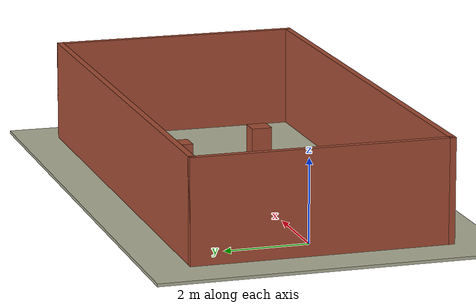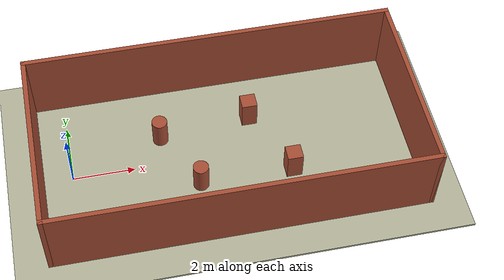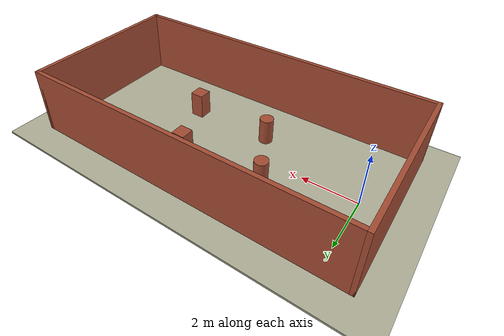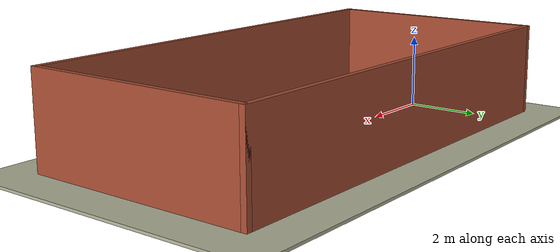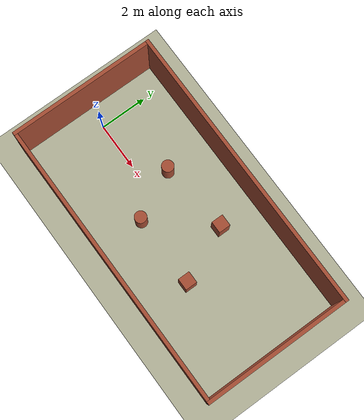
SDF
<sdf version="1.4">
 <world name="default">
  <include><uri>model://ground_plane</uri></include>
  <include><uri>model://sun</uri></include>
  <include>
   <pose>3.0 1 0 0 0 0</pose>
   <uri>model://obstacle_cylinder_thin2</uri>
   <name>obstacle_cylinder1</name>
  </include>
  <include>
   <pose>4.0 -1.0 0 0 0 0</pose>
   <uri>model://obstacle_cylinder_thin2</uri>
   <name>obstacle_cylinder2</name>
  </include>
  <include>
   <pose>6.0 1.3 0 0 0 0</pose>
   <uri>model://obstacle_squared_box1</uri>
   <name>obstacle_squared1</name>
  </include>
  <include>
   <pose>7.0 -1.0 0 0 0 0</pose>
   <uri>model://obstacle_squared_box1</uri>
   <name>obstacle_squared2</name>
  </include>
  <include><pose>5 0 0 0 0 0</pose><uri>model://dep_nav_building1</uri></include>
  <include><uri>model://ground_plane_residential</uri><name>grass</name></include>
 </world>
</sdf>

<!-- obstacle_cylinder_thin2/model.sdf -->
<sdf version='1.5'>
  <model name='obstacle_cylinder_thin2'>
    <link name='link'>
      <pose frame=''>0 0 0 0 -0 0</pose>
      <inertial>
        <mass>1</mass>
        <inertia>
          <ixx>0.145833</ixx>
          <ixy>0</ixy>
          <ixz>0</ixz>
          <iyy>0.145833</iyy>
          <iyz>0</iyz>
          <izz>0.125</izz>
        </inertia>
        <pose frame=''>0 0 0 0 -0 0</pose>
      </inertial>
      <self_collide>0</self_collide>
      <kinematic>0</kinematic>
      <gravity>1</gravity>
      <visual name='visual'>
        <geometry>
          <cylinder>
            <radius>0.25</radius>
            <length>2</length>
          </cylinder>
        </geometry>
        <material>
          <script>
            <uri>file://media/materials/scripts/gazebo.material</uri>
            <name>Gazebo/Bricks</name>
          </script>
          <ambient>1 1 1 1</ambient>
        </material>
        <pose frame=''>0 0 0 0 -0 0</pose>
        <cast_shadows>1</cast_shadows>
        <transparency>0</transparency>
      </visual>
      <collision name='collision'>
        <laser_retro>0</laser_retro>
        <max_contacts>10</max_contacts>
        <pose frame=''>0 0 0 0 -0 0</pose>
        <geometry>
          <cylinder>
            <radius>0.25</radius>
            <length>2</length>
          </cylinder>
        </geometry>
        <surface>
          <friction>
            <ode>
              <mu>1</mu>
              <mu2>1</mu2>
              <fdir1>0 0 0</fdir1>
              <slip1>0</slip1>
              <slip2>0</slip2>
            </ode>
          </friction>
          <bounce>
            <restitution_coefficient>0</restitution_coefficient>
            <threshold>1e+06</threshold>
          </bounce>
          <contact>
            <collide_without_contact>0</collide_without_contact>
            <collide_without_contact_bitmask>1</collide_without_contact_bitmask>
            <collide_bitmask>1</collide_bitmask>
            <ode>
              <soft_cfm>0</soft_cfm>
              <soft_erp>0.2</soft_erp>
              <kp>1e+13</kp>
              <kd>1</kd>
              <max_vel>0.01</max_vel>
              <min_depth>0</min_depth>
            </ode>
            <bullet>
              <split_impulse>1</split_impulse>
              <split_impulse_penetration_threshold>-0.01</split_impulse_penetration_threshold>
              <soft_cfm>0</soft_cfm>
              <soft_erp>0.2</soft_erp>
              <kp>1e+13</kp>
              <kd>1</kd>
            </bullet>
          </contact>
        </surface>
      </collision>
    </link>
    <static>0</static>
    <allow_auto_disable>1</allow_auto_disable>
  </model>
</sdf>

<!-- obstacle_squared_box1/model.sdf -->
<sdf version='1.5'>
  <model name='obstacle_squared_box1'>
    <link name='link'>
      <pose frame=''>0 0 0 -0 -0 -0</pose>
      <inertial>
        <mass>1</mass>
        <inertia>
          <ixx>0.166667</ixx>
          <ixy>0</ixy>
          <ixz>0</ixz>
          <iyy>0.166667</iyy>
          <iyz>0</iyz>
          <izz>0.166667</izz>
        </inertia>
        <pose frame=''>0 0 0 0 -0 0</pose>
      </inertial>
      <self_collide>0</self_collide>
      <kinematic>0</kinematic>
      <gravity>1</gravity>
      <visual name='visual'>
        <geometry>
          <box>
            <size>0.5 0.5 2</size>
          </box>
        </geometry>
        <material>
          <script>
            <uri>file://media/materials/scripts/gazebo.material</uri>
            <name>Gazebo/Bricks</name>
          </script>
          <ambient>1 1 1 1</ambient>
        </material>
        <pose frame=''>0 0 0 0 -0 0</pose>
        <cast_shadows>1</cast_shadows>
        <transparency>0</transparency>
      </visual>
      <collision name='collision'>
        <laser_retro>0</laser_retro>
        <max_contacts>10</max_contacts>
        <pose frame=''>0 0 0 0 -0 0</pose>
        <geometry>
          <box>
            <size>0.5 0.5 2</size>
          </box>
        </geometry>
        <surface>
          <friction>
            <ode>
              <mu>1</mu>
              <mu2>1</mu2>
              <fdir1>0 0 0</fdir1>
              <slip1>0</slip1>
              <slip2>0</slip2>
            </ode>
          </friction>
          <bounce>
            <restitution_coefficient>0</restitution_coefficient>
            <threshold>1e+06</threshold>
          </bounce>
          <contact>
            <collide_without_contact>0</collide_without_contact>
            <collide_without_contact_bitmask>1</collide_without_contact_bitmask>
            <collide_bitmask>1</collide_bitmask>
            <ode>
              <soft_cfm>0</soft_cfm>
              <soft_erp>0.2</soft_erp>
              <kp>1e+13</kp>
              <kd>1</kd>
              <max_vel>0.01</max_vel>
              <min_depth>0</min_depth>
            </ode>
            <bullet>
              <split_impulse>1</split_impulse>
              <split_impulse_penetration_threshold>-0.01</split_impulse_penetration_threshold>
              <soft_cfm>0</soft_cfm>
              <soft_erp>0.2</soft_erp>
              <kp>1e+13</kp>
              <kd>1</kd>
            </bullet>
          </contact>
        </surface>
      </collision>
    </link>
    <static>0</static>
    <allow_auto_disable>1</allow_auto_disable>
  </model>
</sdf>

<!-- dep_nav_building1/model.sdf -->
<sdf version='1.6'>
  <model name='dep_nav_building1'>
    <pose frame=''>5 -0.0135 0 0 -0 0</pose>
    <link name='Wall_0'>
      <collision name='Wall_0_Collision'>
        <geometry>
          <box>
            <size>12.15 0.15 2.5</size>
          </box>
        </geometry>
        <pose frame=''>0 0 1.25 0 -0 0</pose>
      </collision>
      <visual name='Wall_0_Visual'>
        <pose frame=''>0 0 1.25 0 -0 0</pose>
        <geometry>
          <box>
            <size>12.15 0.15 2.5</size>
          </box>
        </geometry>
        <material>
          <script>
            <uri>file://media/materials/scripts/gazebo.material</uri>
            <name>Gazebo/Bricks</name>
          </script>
          <ambient>1 1 1 1</ambient>
        </material>
        <meta>
          <layer>0</layer>
        </meta>
      </visual>
      <pose frame=''>-0 -3.0135 0 0 -0 0</pose>
    </link>
    <link name='Wall_2'>
      <collision name='Wall_2_Collision'>
        <geometry>
          <box>
            <size>6.177 0.15 2.5</size>
          </box>
        </geometry>
        <pose frame=''>0 0 1.25 0 -0 0</pose>
      </collision>
      <visual name='Wall_2_Visual'>
        <pose frame=''>0 0 1.25 0 -0 0</pose>
        <geometry>
          <box>
            <size>6.177 0.15 2.5</size>
          </box>
        </geometry>
        <material>
          <script>
            <uri>file://media/materials/scripts/gazebo.material</uri>
            <name>Gazebo/Bricks</name>
          </script>
          <ambient>1 1 1 1</ambient>
        </material>
        <meta>
          <layer>0</layer>
        </meta>
      </visual>
      <pose frame=''>-6 -0 0 0 -0 1.5708</pose>
    </link>
    <link name='Wall_4'>
      <collision name='Wall_4_Collision'>
        <geometry>
          <box>
            <size>6.177 0.15 2.5</size>
          </box>
        </geometry>
        <pose frame=''>0 0 1.25 0 -0 0</pose>
      </collision>
      <visual name='Wall_4_Visual'>
        <pose frame=''>0 0 1.25 0 -0 0</pose>
        <geometry>
          <box>
            <size>6.177 0.15 2.5</size>
          </box>
        </geometry>
        <material>
          <script>
            <uri>file://media/materials/scripts/gazebo.material</uri>
            <name>Gazebo/Bricks</name>
          </script>
          <ambient>1 1 1 1</ambient>
        </material>
        <meta>
          <layer>0</layer>
        </meta>
      </visual>
      <pose frame=''>6 -0 0 0 -0 1.5708</pose>
    </link>
    <link name='Wall_6'>
      <collision name='Wall_6_Collision'>
        <geometry>
          <box>
            <size>12.15 0.15 2.5</size>
          </box>
        </geometry>
        <pose frame=''>0 0 1.25 0 -0 0</pose>
      </collision>
      <visual name='Wall_6_Visual'>
        <pose frame=''>0 0 1.25 0 -0 0</pose>
        <geometry>
          <box>
            <size>12.15 0.15 2.5</size>
          </box>
        </geometry>
        <material>
          <script>
            <uri>file://media/materials/scripts/gazebo.material</uri>
            <name>Gazebo/Bricks</name>
          </script>
          <ambient>1 1 1 1</ambient>
        </material>
        <meta>
          <layer>0</layer>
        </meta>
      </visual>
      <pose frame=''>-0 3.0135 0 0 -0 0</pose>
    </link>
    <static>1</static>
  </model>
</sdf>

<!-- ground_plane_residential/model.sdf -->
<sdf version="1.5">
  <model name="ground_plane_residential">
    <static>true</static>
    <link name="link">
      <collision name="collision">
        <geometry>
          <plane>
            <normal>0 0 1</normal>
            <size>100 60</size>
          </plane>
        </geometry>
        <surface>
          <friction>
            <ode>
              <mu>100</mu>
              <mu2>50</mu2>
            </ode>
          </friction>
        </surface>
      </collision>
      <visual name="visual">
        <cast_shadows>false</cast_shadows>
        <!--plugin name="some_visual_plugin" filename="libgazebo_visual_plot_plugin.so"/-->
        <geometry>
          <plane>
            <normal>0 0 1</normal>
            <size>110 70</size>
          </plane>
        </geometry>
        <material>
          <script>
            <uri>file://media/materials/scripts/gazebo.material</uri>
            <name>Gazebo/Residential</name>
          </script>
        </material>
      </visual>
    </link>
  </model>
</sdf>
